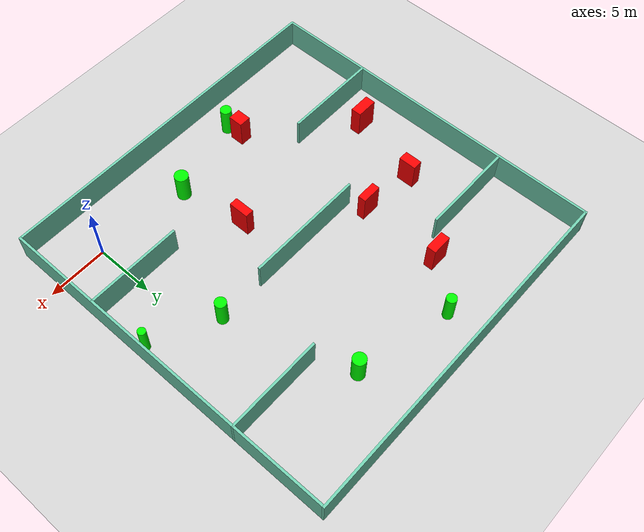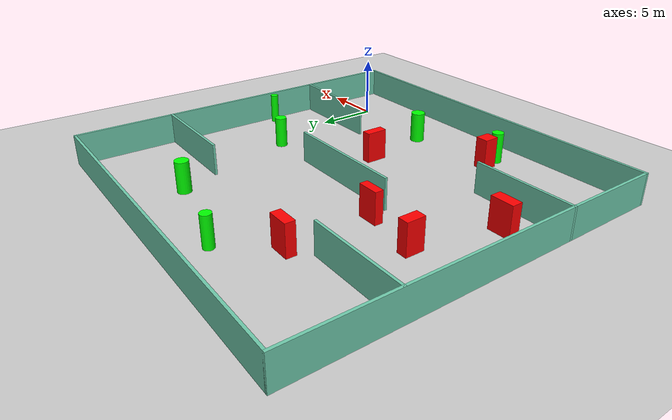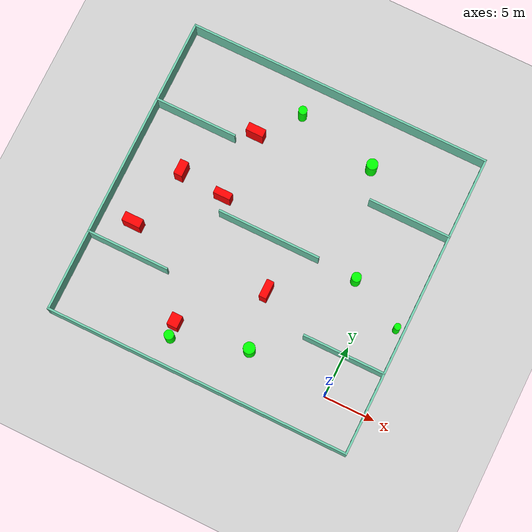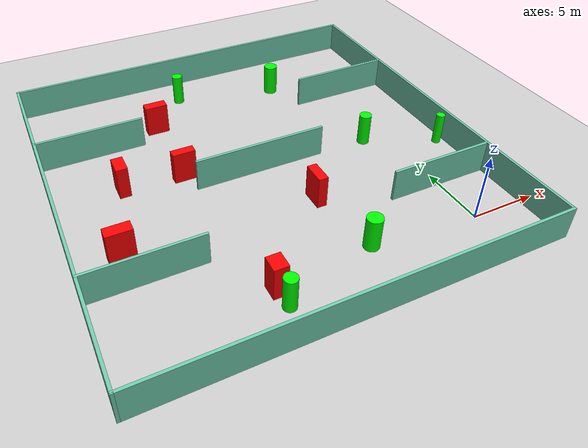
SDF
<sdf version="1.7">
 <world name="default">
  <light name="sun" type="directional">
   <pose>0 0 10 0 -0 0</pose>
   <diffuse>0.8 0.8 0.8 1</diffuse>
   <specular>0.2 0.2 0.2 1</specular>
   <attenuation>
    <range>1000</range>
    <constant>0.9</constant>
    <linear>0.01</linear>
    <quadratic>0.001</quadratic>
   </attenuation>
   <direction>-0.5 0.1 -0.9</direction>
   <spot><inner_angle>0</inner_angle><outer_angle>0</outer_angle><falloff>0</falloff></spot>
  </light>
  <model name="ground_plane">
   <static>1</static>
   <link name="link">
    <collision name="collision">
     <geometry><plane><normal>0 0 1</normal><size>100 100</size></plane></geometry>
     <surface>
      <contact><collide_bitmask>65535</collide_bitmask></contact>
      <friction><ode><mu>100</mu><mu2>50</mu2></ode></friction>
     </surface>
    </collision>
    <visual name="visual">
     <cast_shadows>0</cast_shadows>
     <geometry><plane><normal>0 0 1</normal><size>100 100</size></plane></geometry>
     <material>
      <script><uri>file://media/materials/scripts/gazebo.material</uri><name>Gazebo/Grey</name></script>
     </material>
    </visual>
   </link>
  </model>
  <gravity>0 0 -9.8</gravity>
  <magnetic_field>6e-06 2.3e-05 -4.2e-05</magnetic_field>
  <atmosphere type="adiabatic"/>
  <physics type="ode">
   <max_step_size>0.001</max_step_size>
   <real_time_factor>1</real_time_factor>
   <real_time_update_rate>1000</real_time_update_rate>
  </physics>
  <scene><ambient>0.4 0.4 0.4 1</ambient><background>0.7 0.7 0.7 1</background><shadows>1</shadows></scene>
  <spherical_coordinates>
   <surface_model>EARTH_WGS84</surface_model>
   <latitude_deg>0</latitude_deg>
   <longitude_deg>0</longitude_deg>
   <elevation>0</elevation>
   <heading_deg>0</heading_deg>
  </spherical_coordinates>
  <model name="my_base_walls">
   <link name="Wall_10">
    <collision name="Wall_10_Collision">
     <geometry><box><size>8.2 0.2 2.5</size></box></geometry>
     <pose>0 0 1.25 0 -0 0</pose>
    </collision>
    <visual name="Wall_10_Visual">
     <pose>0 0 1.25 0 -0 0</pose>
     <geometry><box><size>8.2 0.2 2.5</size></box></geometry>
     <material>
      <script><uri>file://media/materials/scripts/gazebo.material</uri><name>Gazebo/Grey</name></script>
      <ambient>0.435294 0.796078 0.67451 1</ambient>
     </material>
     <meta><layer>0</layer></meta>
    </visual>
    <pose>-11 -7 0 0 -0 0</pose>
   </link>
   <link name="Wall_12">
    <collision name="Wall_12_Collision">
     <geometry><box><size>8.2 0.2 2.5</size></box></geometry>
     <pose>0 0 1.25 0 -0 0</pose>
    </collision>
    <visual name="Wall_12_Visual">
     <pose>0 0 1.25 0 -0 0</pose>
     <geometry><box><size>8.2 0.2 2.5</size></box></geometry>
     <material>
      <script><uri>file://media/materials/scripts/gazebo.material</uri><name>Gazebo/Grey</name></script>
      <ambient>0.435294 0.796078 0.67451 1</ambient>
     </material>
     <meta><layer>0</layer></meta>
    </visual>
    <pose>-11 7 0 0 -0 0</pose>
   </link>
   <link name="Wall_14">
    <collision name="Wall_14_Collision">
     <geometry><box><size>8.2 0.2 2.5</size></box></geometry>
     <pose>0 0 1.25 0 -0 0</pose>
    </collision>
    <visual name="Wall_14_Visual">
     <pose>0 0 1.25 0 -0 0</pose>
     <geometry><box><size>8.2 0.2 2.5</size></box></geometry>
     <material>
      <script><uri>file://media/materials/scripts/gazebo.material</uri><name>Gazebo/Grey</name></script>
      <ambient>0.435294 0.796078 0.67451 1</ambient>
     </material>
     <meta><layer>0</layer></meta>
    </visual>
    <pose>11 7 0 0 -0 3.14159</pose>
   </link>
   <link name="Wall_16">
    <collision name="Wall_16_Collision">
     <geometry><box><size>10.2 0.2 2.5</size></box></geometry>
     <pose>0 0 1.25 0 -0 0</pose>
    </collision>
    <visual name="Wall_16_Visual">
     <pose>0 0 1.25 0 -0 0</pose>
     <geometry><box><size>10.2 0.2 2.5</size></box></geometry>
     <material>
      <script><uri>file://media/materials/scripts/gazebo.material</uri><name>Gazebo/Grey</name></script>
      <ambient>0.435294 0.796078 0.67451 1</ambient>
     </material>
     <meta><layer>0</layer></meta>
    </visual>
    <pose>0 0 0 0 -0 3.14159</pose>
   </link>
   <link name="Wall_2">
    <collision name="Wall_2_Collision">
     <geometry><box><size>30.2 0.2 2.5</size></box></geometry>
     <pose>0 0 1.25 0 -0 0</pose>
    </collision>
    <visual name="Wall_2_Visual">
     <pose>0 0 1.25 0 -0 0</pose>
     <geometry><box><size>30.2 0.2 2.5</size></box></geometry>
     <material>
      <script><uri>file://media/materials/scripts/gazebo.material</uri><name>Gazebo/Grey</name></script>
      <ambient>0.435294 0.796078 0.67451 1</ambient>
     </material>
     <meta><layer>0</layer></meta>
    </visual>
    <pose>0 -15 0 0 -0 3.14159</pose>
   </link>
   <link name="Wall_3">
    <collision name="Wall_3_Collision">
     <geometry><box><size>30.2 0.2 2.5</size></box></geometry>
     <pose>0 0 1.25 0 -0 0</pose>
    </collision>
    <visual name="Wall_3_Visual">
     <pose>0 0 1.25 0 -0 0</pose>
     <geometry><box><size>30.2 0.2 2.5</size></box></geometry>
     <material>
      <script><uri>file://media/materials/scripts/gazebo.material</uri><name>Gazebo/Grey</name></script>
      <ambient>0.435294 0.796078 0.67451 1</ambient>
     </material>
     <meta><layer>0</layer></meta>
    </visual>
    <pose>-15 0 0 0 -0 1.5708</pose>
   </link>
   <link name="Wall_4">
    <collision name="Wall_4_Collision">
     <geometry><box><size>30.2 0.2 2.5</size></box></geometry>
     <pose>0 0 1.25 0 -0 0</pose>
    </collision>
    <visual name="Wall_4_Visual">
     <pose>0 0 1.25 0 -0 0</pose>
     <geometry><box><size>30.2 0.2 2.5</size></box></geometry>
     <material>
      <script><uri>file://media/materials/scripts/gazebo.material</uri><name>Gazebo/Grey</name></script>
      <ambient>0.435294 0.796078 0.67451 1</ambient>
     </material>
     <meta><layer>0</layer></meta>
    </visual>
    <pose>0 15 0 0 -0 0</pose>
   </link>
   <link name="Wall_6">
    <collision name="Wall_6_Collision">
     <geometry><box><size>30.2 0.2 2.5</size></box></geometry>
     <pose>0 0 1.25 0 -0 0</pose>
    </collision>
    <visual name="Wall_6_Visual">
     <pose>0 0 1.25 0 -0 0</pose>
     <geometry><box><size>30.2 0.2 2.5</size></box></geometry>
     <material>
      <script><uri>file://media/materials/scripts/gazebo.material</uri><name>Gazebo/Grey</name></script>
      <ambient>0.435294 0.796078 0.67451 1</ambient>
     </material>
     <meta><layer>0</layer></meta>
    </visual>
    <pose>15 0 0 0 -0 1.5708</pose>
   </link>
   <link name="Wall_8">
    <collision name="Wall_8_Collision">
     <geometry><box><size>8.2 0.2 2.5</size></box></geometry>
     <pose>0 0 1.25 0 -0 0</pose>
    </collision>
    <visual name="Wall_8_Visual">
     <pose>0 0 1.25 0 -0 0</pose>
     <geometry><box><size>8.2 0.2 2.5</size></box></geometry>
     <material>
      <script><uri>file://media/materials/scripts/gazebo.material</uri><name>Gazebo/Grey</name></script>
      <ambient>0.435294 0.796078 0.67451 1</ambient>
     </material>
     <meta><layer>0</layer></meta>
    </visual>
    <pose>11 -7 0 0 -0 3.14159</pose>
   </link>
   <static>1</static>
   <pose>-11 11 0 0 -0 0</pose>
  </model>
  <model name="cylinder1">
   <static>1</static>
   <link name="link">
    <inertial>
     <mass>1</mass>
     <inertia><ixx>0.5</ixx><ixy>0</ixy><ixz>0</ixz><iyy>0.5</iyy><iyz>0</iyz><izz>1</izz></inertia>
    </inertial>
    <collision name="collision">
     <geometry><cylinder><radius>0.5740961136674247</radius><length>2.5</length></cylinder></geometry>
    </collision>
    <visual name="visual">
     <geometry><cylinder><radius>0.5740961136674247</radius><length>2.5</length></cylinder></geometry>
     <material>
      <ambient>0 1 0 1</ambient>
      <diffuse>0 1 0 1</diffuse>
      <specular>0.1 0.1 0.1 1</specular>
      <emissive>0 0 0 0</emissive>
     </material>
    </visual>
   </link>
   <pose>-7.981161120064639 0.7411244232875966 1.25 0 0 0</pose>
  </model>
  <model name="cylinder2">
   <static>1</static>
   <link name="link">
    <inertial>
     <mass>1</mass>
     <inertia><ixx>0.5</ixx><ixy>0</ixy><ixz>0</ixz><iyy>0.5</iyy><iyz>0</iyz><izz>1</izz></inertia>
    </inertial>
    <collision name="collision">
     <geometry><cylinder><radius>0.4230234106315453</radius><length>2.5</length></cylinder></geometry>
    </collision>
    <visual name="visual">
     <geometry><cylinder><radius>0.4230234106315453</radius><length>2.5</length></cylinder></geometry>
     <material>
      <ambient>0 1 0 1</ambient>
      <diffuse>0 1 0 1</diffuse>
      <specular>0.1 0.1 0.1 1</specular>
      <emissive>0 0 0 0</emissive>
     </material>
    </visual>
   </link>
   <pose>-13.30135708485829 22.946238092630544 1.25 0 0 0</pose>
  </model>
  <model name="cylinder3">
   <static>1</static>
   <link name="link">
    <inertial>
     <mass>1</mass>
     <inertia><ixx>0.5</ixx><ixy>0</ixy><ixz>0</ixz><iyy>0.5</iyy><iyz>0</iyz><izz>1</izz></inertia>
    </inertial>
    <collision name="collision">
     <geometry><cylinder><radius>0.5445877003737933</radius><length>2.5</length></cylinder></geometry>
    </collision>
    <visual name="visual">
     <geometry><cylinder><radius>0.5445877003737933</radius><length>2.5</length></cylinder></geometry>
     <material>
      <ambient>0 1 0 1</ambient>
      <diffuse>0 1 0 1</diffuse>
      <specular>0.1 0.1 0.1 1</specular>
      <emissive>0 0 0 0</emissive>
     </material>
    </visual>
   </link>
   <pose>-5.274451914224931 21.102749394838433 1.25 0 0 0</pose>
  </model>
  <model name="cylinder4">
   <static>1</static>
   <link name="link">
    <inertial>
     <mass>1</mass>
     <inertia><ixx>0.5</ixx><ixy>0</ixy><ixz>0</ixz><iyy>0.5</iyy><iyz>0</iyz><izz>1</izz></inertia>
    </inertial>
    <collision name="collision">
     <geometry><cylinder><radius>0.3284866182500743</radius><length>2.5</length></cylinder></geometry>
    </collision>
    <visual name="visual">
     <geometry><cylinder><radius>0.3284866182500743</radius><length>2.5</length></cylinder></geometry>
     <material>
      <ambient>0 1 0 1</ambient>
      <diffuse>0 1 0 1</diffuse>
      <specular>0.1 0.1 0.1 1</specular>
      <emissive>0 0 0 0</emissive>
     </material>
    </visual>
   </link>
   <pose>3.2650593314884304 8.395498788699658 1.25 0 0 0</pose>
  </model>
  <model name="cylinder5">
   <static>1</static>
   <link name="link">
    <inertial>
     <mass>1</mass>
     <inertia><ixx>0.5</ixx><ixy>0</ixy><ixz>0</ixz><iyy>0.5</iyy><iyz>0</iyz><izz>1</izz></inertia>
    </inertial>
    <collision name="collision">
     <geometry><cylinder><radius>0.47186248232143924</radius><length>2.5</length></cylinder></geometry>
    </collision>
    <visual name="visual">
     <geometry><cylinder><radius>0.47186248232143924</radius><length>2.5</length></cylinder></geometry>
     <material>
      <ambient>0 1 0 1</ambient>
      <diffuse>0 1 0 1</diffuse>
      <specular>0.1 0.1 0.1 1</specular>
      <emissive>0 0 0 0</emissive>
     </material>
    </visual>
   </link>
   <pose>-15.052192431063961 -1.3590502697508713 1.25 0 0 0</pose>
  </model>
  <model name="cylinder6">
   <static>1</static>
   <link name="link">
    <inertial>
     <mass>1</mass>
     <inertia><ixx>0.5</ixx><ixy>0</ixy><ixz>0</ixz><iyy>0.5</iyy><iyz>0</iyz><izz>1</izz></inertia>
    </inertial>
    <collision name="collision">
     <geometry><cylinder><radius>0.47146741332024855</radius><length>2.5</length></cylinder></geometry>
    </collision>
    <visual name="visual">
     <geometry><cylinder><radius>0.47146741332024855</radius><length>2.5</length></cylinder></geometry>
     <material>
      <ambient>0 1 0 1</ambient>
      <diffuse>0 1 0 1</diffuse>
      <specular>0.1 0.1 0.1 1</specular>
      <emissive>0 0 0 0</emissive>
     </material>
    </visual>
   </link>
   <pose>-2.0445967070396485 10.890136686246933 1.25 0 0 0</pose>
  </model>
  <model name="box1">
   <static>1</static>
   <link name="link">
    <inertial>
     <mass>1</mass>
     <inertia><ixx>0.083</ixx><ixy>0</ixy><ixz>0</ixz><iyy>0.083</iyy><iyz>0</iyz><izz>0.083</izz></inertia>
    </inertial>
    <collision name="collision">
     <geometry><box><size>1.7347433291531649 0.7888548839825047 2.5</size></box></geometry>
    </collision>
    <visual name="visual">
     <geometry><box><size>1.7347433291531649 0.7888548839825047 2.5</size></box></geometry>
     <material>
      <ambient>1 0 0 1</ambient>
      <diffuse>1 0 0 1</diffuse>
      <specular>0.1 0.1 0.1 1</specular>
      <emissive>0 0 0 0</emissive>
     </material>
    </visual>
    <sensor name="my_contact" type="contact">
     <contact><collision>box_collision</collision><topic>__default_topic__</topic></contact>
    </sensor>
   </link>
   <pose>-16.410486297749856 19.355200803983845 1.25 0 0 0</pose>
  </model>
  <model name="box2">
   <static>1</static>
   <link name="link">
    <inertial>
     <mass>1</mass>
     <inertia><ixx>0.083</ixx><ixy>0</ixy><ixz>0</ixz><iyy>0.083</iyy><iyz>0</iyz><izz>0.083</izz></inertia>
    </inertial>
    <collision name="collision">
     <geometry><box><size>1.8299137344220087 0.8852500584684639 2.5</size></box></geometry>
    </collision>
    <visual name="visual">
     <geometry><box><size>1.8299137344220087 0.8852500584684639 2.5</size></box></geometry>
     <material>
      <ambient>1 0 0 1</ambient>
      <diffuse>1 0 0 1</diffuse>
      <specular>0.1 0.1 0.1 1</specular>
      <emissive>0 0 0 0</emissive>
     </material>
    </visual>
    <sensor name="my_contact" type="contact">
     <contact><collision>box_collision</collision><topic>__default_topic__</topic></contact>
    </sensor>
   </link>
   <pose>-22.849722727445837 6.704400664244886 1.25 0 0 0</pose>
  </model>
  <model name="box3">
   <static>1</static>
   <link name="link">
    <inertial>
     <mass>1</mass>
     <inertia><ixx>0.083</ixx><ixy>0</ixy><ixz>0</ixz><iyy>0.083</iyy><iyz>0</iyz><izz>0.083</izz></inertia>
    </inertial>
    <collision name="collision">
     <geometry><box><size>1.697133907925374 0.6747617720877596 2.5</size></box></geometry>
    </collision>
    <visual name="visual">
     <geometry><box><size>1.697133907925374 0.6747617720877596 2.5</size></box></geometry>
     <material>
      <ambient>1 0 0 1</ambient>
      <diffuse>1 0 0 1</diffuse>
      <specular>0.1 0.1 0.1 1</specular>
      <emissive>0 0 0 0</emissive>
     </material>
    </visual>
    <sensor name="my_contact" type="contact">
     <contact><collision>box_collision</collision><topic>__default_topic__</topic></contact>
    </sensor>
   </link>
   <pose>-16.49633754367735 12.595759005959954 1.25 0 0 0</pose>
  </model>
  <model name="box4">
   <static>1</static>
   <link name="link">
    <inertial>
     <mass>1</mass>
     <inertia><ixx>0.083</ixx><ixy>0</ixy><ixz>0</ixz><iyy>0.083</iyy><iyz>0</iyz><izz>0.083</izz></inertia>
    </inertial>
    <collision name="collision">
     <geometry><box><size>1.0352353913115562 1.2350667181149413 2.5</size></box></geometry>
    </collision>
    <visual name="visual">
     <geometry><box><size>1.0352353913115562 1.2350667181149413 2.5</size></box></geometry>
     <material>
      <ambient>1 0 0 1</ambient>
      <diffuse>1 0 0 1</diffuse>
      <specular>0.1 0.1 0.1 1</specular>
      <emissive>0 0 0 0</emissive>
     </material>
    </visual>
    <sensor name="my_contact" type="contact">
     <contact><collision>box_collision</collision><topic>__default_topic__</topic></contact>
    </sensor>
   </link>
   <pose>-15.194417632644798 0.07012708440010273 1.25 0 0 0</pose>
  </model>
  <model name="box5">
   <static>1</static>
   <link name="link">
    <inertial>
     <mass>1</mass>
     <inertia><ixx>0.083</ixx><ixy>0</ixy><ixz>0</ixz><iyy>0.083</iyy><iyz>0</iyz><izz>0.083</izz></inertia>
    </inertial>
    <collision name="collision">
     <geometry><box><size>0.7232930025301286 1.721749904963878 2.5</size></box></geometry>
    </collision>
    <visual name="visual">
     <geometry><box><size>0.7232930025301286 1.721749904963878 2.5</size></box></geometry>
     <material>
      <ambient>1 0 0 1</ambient>
      <diffuse>1 0 0 1</diffuse>
      <specular>0.1 0.1 0.1 1</specular>
      <emissive>0 0 0 0</emissive>
     </material>
    </visual>
    <sensor name="my_contact" type="contact">
     <contact><collision>box_collision</collision><topic>__default_topic__</topic></contact>
    </sensor>
   </link>
   <pose>-8.948728753660273 6.303775501250643 1.25 0 0 0</pose>
  </model>
  <model name="box6">
   <static>1</static>
   <link name="link">
    <inertial>
     <mass>1</mass>
     <inertia><ixx>0.083</ixx><ixy>0</ixy><ixz>0</ixz><iyy>0.083</iyy><iyz>0</iyz><izz>0.083</izz></inertia>
    </inertial>
    <collision name="collision">
     <geometry><box><size>0.8415858024698382 1.4866505101090326 2.5</size></box></geometry>
    </collision>
    <visual name="visual">
     <geometry><box><size>0.8415858024698382 1.4866505101090326 2.5</size></box></geometry>
     <material>
      <ambient>1 0 0 1</ambient>
      <diffuse>1 0 0 1</diffuse>
      <specular>0.1 0.1 0.1 1</specular>
      <emissive>0 0 0 0</emissive>
     </material>
    </visual>
    <sensor name="my_contact" type="contact">
     <contact><collision>box_collision</collision><topic>__default_topic__</topic></contact>
    </sensor>
   </link>
   <pose>-21.033131414816186 13.057744364618763 1.25 0 0 0</pose>
  </model>
 </world>
</sdf>
